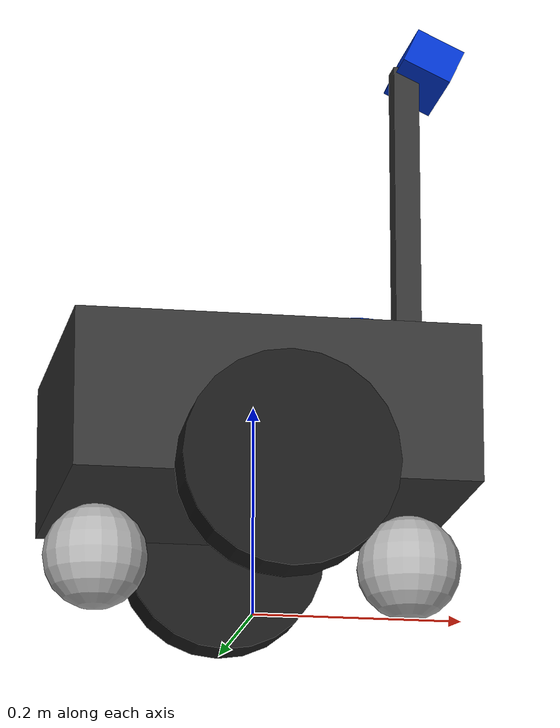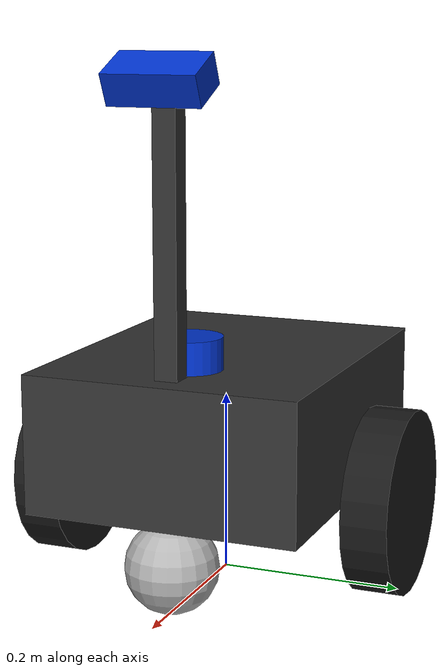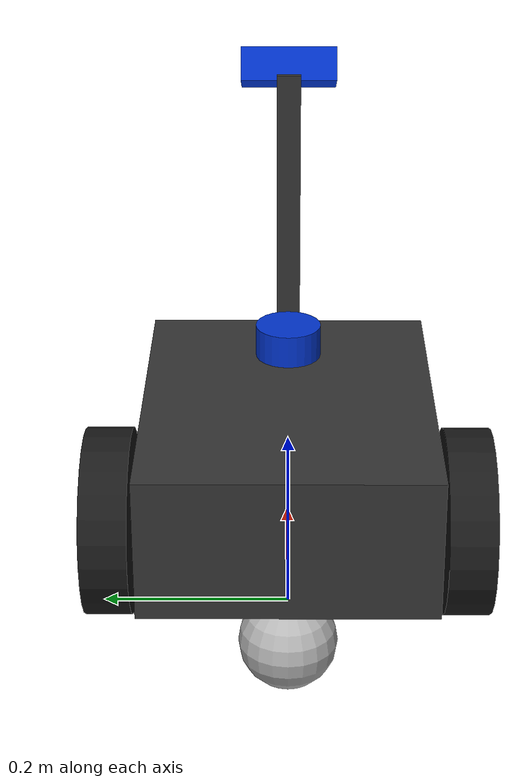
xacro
<?xml version="1.0"?>
<robot xmlns:xacro="http://www.ros.org/wiki/xacro">

  <!-- ─── chassis ─────────────────────────────────────────────────── -->
  <link name="base_footprint"/>

  <joint name="base_footprint_joint" type="fixed">
    <origin xyz="0 0 0.175" rpy="0 0 0"/>
    <parent link="base_footprint"/>
    <child  link="chassis_link"/>
  </joint>

  <link name="chassis_link">
    <visual>
      <origin xyz="0 0 0" rpy="0 0 0"/>
      <geometry><box size="0.38 0.30 0.15"/></geometry>
      <material name="dark_grey">
        <color rgba="0.2 0.2 0.2 1.0"/>
      </material>
    </visual>
    <collision>
      <origin xyz="0 0 0" rpy="0 0 0"/>
      <geometry><box size="0.38 0.30 0.15"/></geometry>
    </collision>
    <inertial>
      <mass value="20.0"/>
      <origin xyz="0 0 0" rpy="0 0 0"/>
      <inertia ixx="0.188" ixy="0" ixz="0"
               iyy="0.278" iyz="0"
               izz="0.391"/>
    </inertial>
  </link>

  <!-- ─── virtual chassis-top link (arm mounting point) ──────────── -->
  <joint name="chassis_top_joint" type="fixed">
    <origin xyz="0 0 0.075" rpy="0 0 0"/>
    <parent link="chassis_link"/>
    <child  link="chassis_top_link"/>
  </joint>
  <link name="chassis_top_link"/>

  <!-- ─── drive wheels ────────────────────────────────────────────── -->
  <!-- wheel_radius=0.10  width=0.05  mass=0.5 kg  axis along Y
       wheel center z = 0.175 - 0.075 = 0.100 m  (bottom at z=0) -->

  <joint name="left_wheel_joint" type="continuous">
    <origin xyz="0 0.190 -0.075" rpy="-1.5707963 0 0"/>
    <parent link="chassis_link"/>
    <child  link="left_wheel_link"/>
    <axis xyz="0 0 1"/>
    <dynamics damping="2.0" friction="0.5"/>
  </joint>
  <link name="left_wheel_link">
    <visual>
      <geometry><cylinder radius="0.10" length="0.05"/></geometry>
      <material name="black"><color rgba="0.1 0.1 0.1 1.0"/></material>
    </visual>
    <collision>
      <geometry><cylinder radius="0.10" length="0.05"/></geometry>
    </collision>
    <inertial>
      <mass value="0.5"/>
      <origin xyz="0 0 0"/>
      <!-- solid cylinder r=0.10 h=0.05 m=0.5:
           Ixx=Iyy = m(3r²+h²)/12 = 1.354e-3
           Izz     = mr²/2        = 2.500e-3
           Triangle check: 1.354e-3+1.354e-3 = 2.708e-3 > 2.500e-3 OK -->
      <inertia ixx="1.354e-3" ixy="0" ixz="0"
               iyy="1.354e-3" iyz="0"
               izz="2.500e-3"/>
    </inertial>
  </link>

  <joint name="right_wheel_joint" type="continuous">
    <origin xyz="0 -0.190 -0.075" rpy="-1.5707963 0 0"/>
    <parent link="chassis_link"/>
    <child  link="right_wheel_link"/>
    <axis xyz="0 0 1"/>
    <dynamics damping="2.0" friction="0.5"/>
  </joint>
  <link name="right_wheel_link">
    <visual>
      <geometry><cylinder radius="0.10" length="0.05"/></geometry>
      <material name="black"/>
    </visual>
    <collision>
      <geometry><cylinder radius="0.10" length="0.05"/></geometry>
    </collision>
    <inertial>
      <mass value="0.5"/>
      <origin xyz="0 0 0"/>
      <inertia ixx="1.354e-3" ixy="0" ixz="0"
               iyy="1.354e-3" iyz="0"
               izz="2.500e-3"/>
    </inertial>
  </link>

  <!-- ─── passive casters (ball, zero friction) ────────────────────── -->
  <!-- caster_radius=0.05  center z = 0.175-0.125 = 0.050 m  (bottom at z=0) -->

  <joint name="front_caster_joint" type="continuous">
    <origin xyz="0.15 0 -0.125" rpy="0 0 0"/>
    <parent link="chassis_link"/>
    <child  link="front_caster_link"/>
    <axis xyz="1 0 0"/>
  </joint>
  <link name="front_caster_link">
    <visual>
      <geometry><sphere radius="0.05"/></geometry>
      <material name="light_grey"><color rgba="0.7 0.7 0.7 1.0"/></material>
    </visual>
    <collision>
      <geometry><sphere radius="0.05"/></geometry>
    </collision>
    <inertial>
      <mass value="0.1"/>
      <origin xyz="0 0 0"/>
      <inertia ixx="1.0e-4" ixy="0" ixz="0"
               iyy="1.0e-4" iyz="0"
               izz="1.0e-4"/>
    </inertial>
  </link>

  <joint name="rear_caster_joint" type="continuous">
    <origin xyz="-0.15 0 -0.125" rpy="0 0 0"/>
    <parent link="chassis_link"/>
    <child  link="rear_caster_link"/>
    <axis xyz="1 0 0"/>
  </joint>
  <link name="rear_caster_link">
    <visual>
      <geometry><sphere radius="0.05"/></geometry>
      <material name="light_grey"/>
    </visual>
    <collision>
      <geometry><sphere radius="0.05"/></geometry>
    </collision>
    <inertial>
      <mass value="0.1"/>
      <origin xyz="0 0 0"/>
      <inertia ixx="1.0e-4" ixy="0" ixz="0"
               iyy="1.0e-4" iyz="0"
               izz="1.0e-4"/>
    </inertial>
  </link>

  <!-- ─── LiDAR ─────────────────────────────────────────────────────── -->
  <joint name="lidar_joint" type="fixed">
    <origin xyz="0.10 0 0.09" rpy="0 0 0"/>
    <parent link="chassis_link"/>
    <child  link="lidar_link"/>
  </joint>
  <link name="lidar_link">
    <visual>
      <geometry><cylinder radius="0.035" length="0.04"/></geometry>
      <material name="blue"><color rgba="0.0 0.2 0.8 1.0"/></material>
    </visual>
    <inertial>
      <mass value="0.1"/>
      <origin xyz="0 0 0"/>
      <inertia ixx="1e-5" ixy="0" ixz="0" iyy="1e-5" iyz="0" izz="1e-5"/>
    </inertial>
  </link>

  <!-- ─── IMU ───────────────────────────────────────────────────────── -->
  <joint name="imu_joint" type="fixed">
    <origin xyz="0 0 0" rpy="0 0 0"/>
    <parent link="chassis_link"/>
    <child  link="imu_link"/>
  </joint>
  <link name="imu_link">
    <inertial>
      <mass value="0.01"/>
      <origin xyz="0 0 0"/>
      <inertia ixx="1e-6" ixy="0" ixz="0" iyy="1e-6" iyz="0" izz="1e-6"/>
    </inertial>
  </link>

  <!-- ─── RGB-D camera on a forward mast ──────────────────────────── -->
  <joint name="camera_mast_joint" type="fixed">
    <origin xyz="0.15 0 0.075" rpy="0 0 0"/>
    <parent link="chassis_link"/>
    <child  link="camera_mast_link"/>
  </joint>
  <link name="camera_mast_link">
    <visual>
      <origin xyz="0 0 0.15"/>
      <geometry><box size="0.025 0.025 0.30"/></geometry>
      <material name="dark_grey"/>
    </visual>
    <inertial>
      <mass value="0.1"/>
      <origin xyz="0 0 0.15"/>
      <!-- 0.10 kg box 0.025×0.025×0.30: Ixx=Iyy=m(y²+z²)/12≈7.6e-4 -->
      <inertia ixx="7.6e-4" ixy="0" ixz="0" iyy="7.6e-4" iyz="0" izz="1e-5"/>
    </inertial>
  </link>

  <!-- camera_link: top of mast (z=0.55m), tilted 25° down to see table surface -->
  <joint name="camera_joint" type="fixed">
    <origin xyz="0.02 0 0.30" rpy="0 0.436 0"/>
    <parent link="camera_mast_link"/>
    <child  link="camera_link"/>
  </joint>
  <link name="camera_link">
    <visual>
      <geometry><box size="0.05 0.10 0.035"/></geometry>
      <material name="blue"/>
    </visual>
    <inertial>
      <mass value="0.1"/>
      <origin xyz="0 0 0"/>
      <inertia ixx="1e-4" ixy="0" ixz="0" iyy="1e-4" iyz="0" izz="1e-4"/>
    </inertial>
  </link>

  <!-- camera_optical_link: REP-103 optical frame (z=forward, x=right, y=down) -->
  <joint name="camera_optical_joint" type="fixed">
    <origin xyz="0 0 0" rpy="-1.5707963 0 -1.5707963"/>
    <parent link="camera_link"/>
    <child  link="camera_optical_link"/>
  </joint>
  <link name="camera_optical_link"/>

  <!-- ═══════════════════════════════════════════════════════════════
       Gazebo Harmonic plugins
  ═══════════════════════════════════════════════════════════════════ -->

  <!-- Caster wheels: zero friction so they slide freely -->
  <gazebo reference="front_caster_link">
    <mu1>0.0</mu1>
    <mu2>0.0</mu2>
  </gazebo>
  <gazebo reference="rear_caster_link">
    <mu1>0.0</mu1>
    <mu2>0.0</mu2>
  </gazebo>

  <!-- Drive wheel friction (good traction) -->
  <gazebo reference="left_wheel_link">
    <mu1>1.0</mu1>
    <mu2>1.0</mu2>
  </gazebo>
  <gazebo reference="right_wheel_link">
    <mu1>1.0</mu1>
    <mu2>1.0</mu2>
  </gazebo>

  <!-- 360° 2-D LiDAR → /scan -->
  <gazebo reference="lidar_link">
    <sensor name="lidar_sensor" type="gpu_lidar">
      <gz_frame_id>lidar_link</gz_frame_id>
      <topic>/scan</topic>
      <update_rate>10</update_rate>
      <lidar>
        <scan>
          <horizontal>
            <samples>360</samples>
            <resolution>1</resolution>
            <min_angle>-3.14159265</min_angle>
            <max_angle>3.14159265</max_angle>
          </horizontal>
        </scan>
        <range>
          <min>0.15</min>
          <max>10.0</max>
          <resolution>0.01</resolution>
        </range>
        <noise>
          <type>gaussian</type>
          <mean>0.0</mean>
          <stddev>0.01</stddev>
        </noise>
      </lidar>
      <always_on>true</always_on>
      <visualize>false</visualize>
    </sensor>
  </gazebo>

  <!-- IMU → /imu -->
  <gazebo reference="imu_link">
    <sensor name="imu_sensor" type="imu">
      <gz_frame_id>imu_link</gz_frame_id>
      <topic>/imu</topic>
      <update_rate>100</update_rate>
      <always_on>true</always_on>
    </sensor>
  </gazebo>

  <!-- RGB-D camera → /camera/* -->
  <gazebo reference="camera_link">
    <sensor name="rgbd_camera" type="rgbd_camera">
      <gz_frame_id>camera_optical_link</gz_frame_id>
      <topic>/camera</topic>
      <update_rate>15</update_rate>
      <camera>
        <horizontal_fov>1.047</horizontal_fov>
        <image>
          <width>640</width>
          <height>480</height>
          <format>RGB_INT8</format>
        </image>
        <clip>
          <near>0.1</near>
          <far>10.0</far>
        </clip>
      </camera>
      <always_on>true</always_on>
      <visualize>false</visualize>
    </sensor>
  </gazebo>

</robot>
